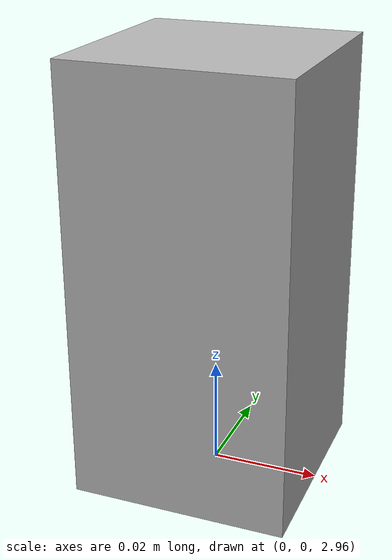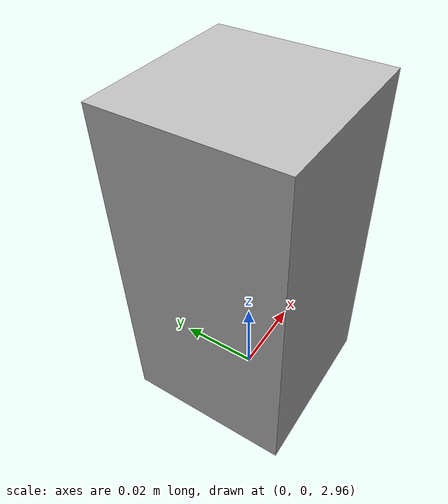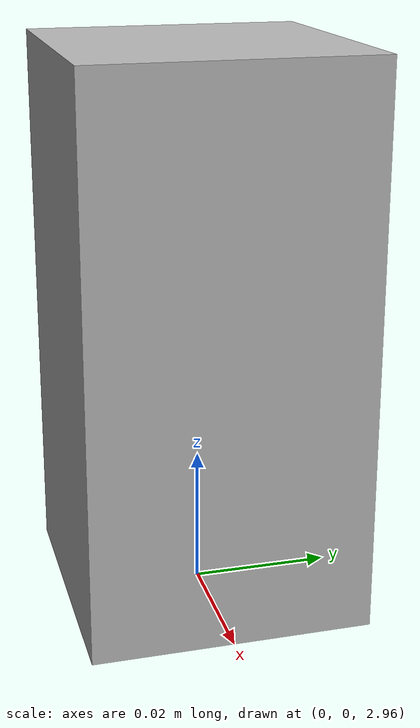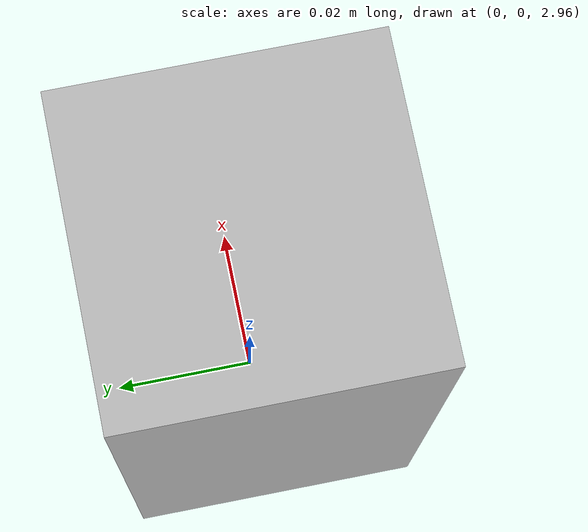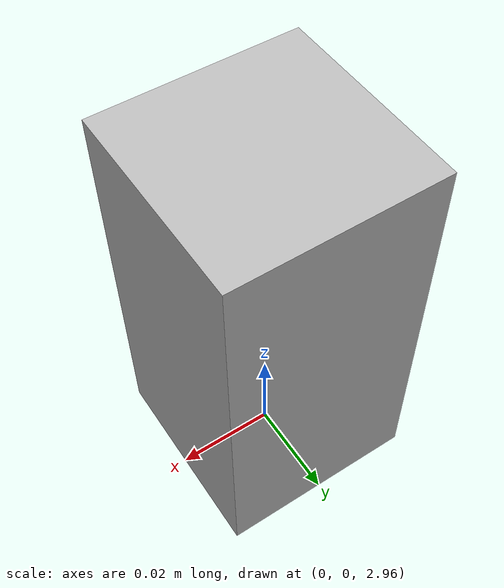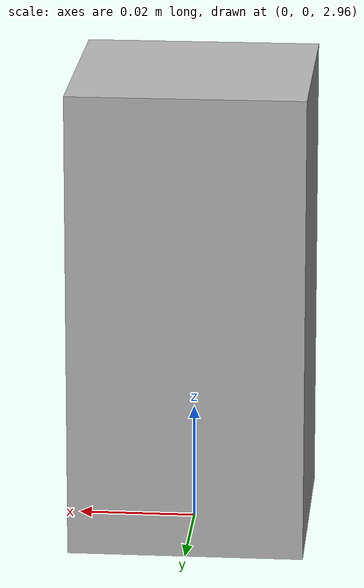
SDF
<?xml version="1.0" ?>
<sdf version="1.9">
  <model name="gripper_depth_camera">
    <static>true</static>
    <pose>0 0 3 0 1.5708 1.5708</pose>

    <link name="camera_link">
      <pose>0 0 0 0 0 0</pose>

      <visual name="camera_visual">
        <geometry>
          <box>
            <size>0.08 0.04 0.04</size>
          </box>
        </geometry>
      </visual>

      <sensor name="depth_camera" type="camera">
        <always_on>true</always_on>
        <update_rate>30</update_rate>
        <topic>/gripper_camera/image</topic>

        <camera>
          <horizontal_fov>1.047</horizontal_fov>
          <image>
            <width>640</width>
            <height>480</height>
            <format>R8G8B8</format>
          </image>
          <clip>
            <near>0.05</near>
            <far>5.0</far>
          </clip>
        </camera>
      </sensor>
    </link>
  </model>
</sdf>
